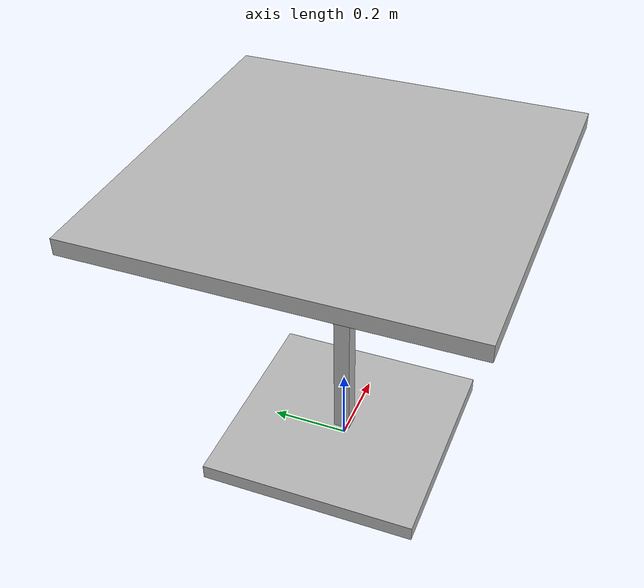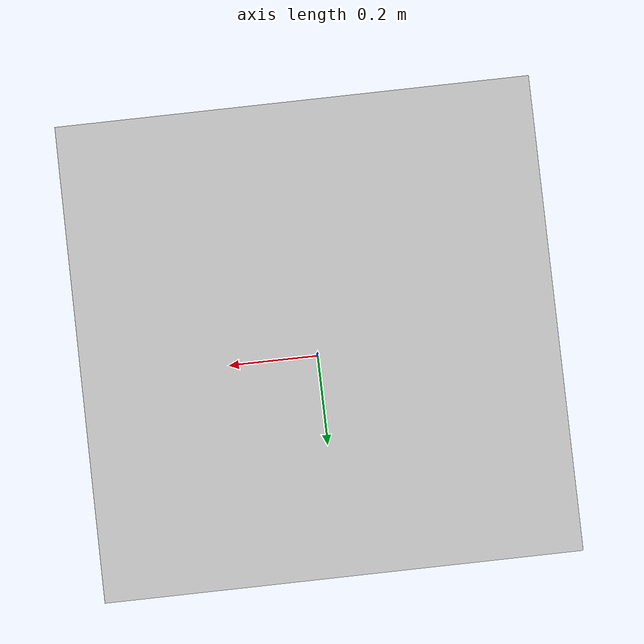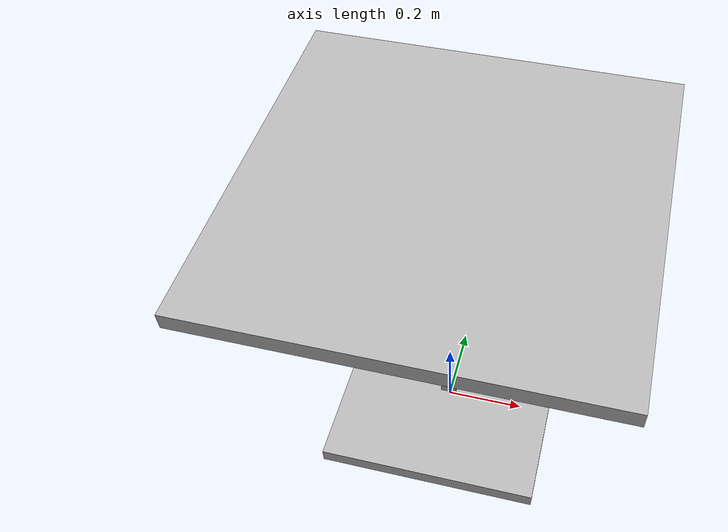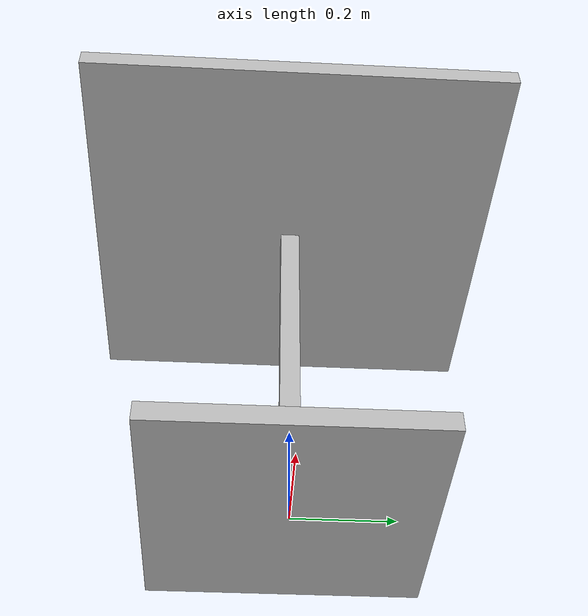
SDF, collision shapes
<?xml version="1.0" ?>
<sdf version="1.5">
  <model name="cafe_table">
    <static>true</static>
    <link name="link">
      <collision name="surface">
        <pose>0 0 0.8 0 0 0</pose>
        <geometry>
          <box>
            <size>0.913 0.913 0.04</size>
          </box>
        </geometry>
      </collision>

      <collision name="column">
        <pose>0 0 0.39 0 0 0</pose>
        <geometry>
          <box>
            <size>0.042 0.042 0.76</size>
          </box>
        </geometry>
      </collision>

      <collision name="base">
        <pose>0 0 0.02 0 0 0</pose>
        <geometry>
          <box>
            <size>0.56 0.56 0.04</size>
          </box>
        </geometry>
      </collision>

      <visual name="visual">
        <geometry>
          <mesh>
            <uri>model://cafe_table/meshes/cafe_table.dae</uri>
          </mesh>
        </geometry>
      </visual>
    </link>
  </model>
</sdf>
